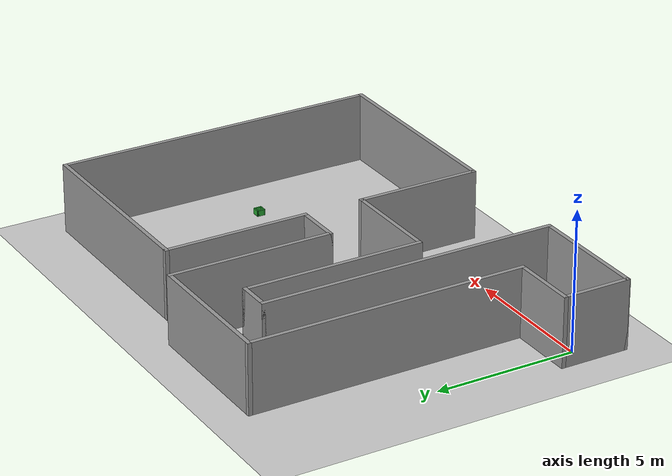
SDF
<sdf version="1.7">
 <world name="default">
  <include><uri>model://ground_plane</uri></include>
  <include><uri>model://sun</uri><pose>0 0 20 0 0 0</pose></include>
  <light name="spot_light" type="spot">
   <pose>10 5 25 0 -0 0</pose>
   <diffuse>1 1 1 1</diffuse>
   <specular>1 1 1 1</specular>
   <direction>0 0 -1</direction>
   <attenuation>
    <range>100</range>
    <constant>0.1</constant>
    <linear>0.01</linear>
    <quadratic>0.001</quadratic>
   </attenuation>
   <spot><inner_angle>0.9</inner_angle><outer_angle>1.5</outer_angle><falloff>1</falloff></spot>
  </light>
  <include><uri>model://GreenBin</uri><name>bin</name><pose>13.6541 3.67158 0.010000 0 -0 0</pose></include>
  <model name="building">
   <pose>7.55 4.5 0 0 -0 -1.5708</pose>
   <link name="Wall_0">
    <collision name="Wall_0_Collision">
     <geometry><box><size>5.25 0.15 2.5</size></box></geometry>
     <pose>0 0 1.25 0 -0 0</pose>
    </collision>
    <visual name="Wall_0_Visual">
     <pose>0 0 1.25 0 -0 0</pose>
     <geometry><box><size>5.25 0.15 2.5</size></box></geometry>
     <material>
      <script><uri>file://media/materials/scripts/gazebo.material</uri><name>Gazebo/Grey</name></script>
      <ambient>1 1 1 1</ambient>
     </material>
     <meta><layer>0</layer></meta>
    </visual>
    <pose>-2.9 0.85 0 0 -0 3.14159</pose>
   </link>
   <link name="Wall_1">
    <collision name="Wall_1_Collision">
     <geometry><box><size>7.5 0.15 2.5</size></box></geometry>
     <pose>0 0 1.25 0 -0 0</pose>
    </collision>
    <visual name="Wall_1_Visual">
     <pose>0 0 1.25 0 -0 0</pose>
     <geometry><box><size>7.5 0.15 2.5</size></box></geometry>
     <material>
      <script><uri>file://media/materials/scripts/gazebo.material</uri><name>Gazebo/Grey</name></script>
      <ambient>1 1 1 1</ambient>
     </material>
     <meta><layer>0</layer></meta>
    </visual>
    <pose>-5.45 4.525 0 0 -0 1.5708</pose>
   </link>
   <link name="Wall_10">
    <collision name="Wall_10_Collision">
     <geometry><box><size>2.4 0.15 2.5</size></box></geometry>
     <pose>0 0 1.25 0 -0 0</pose>
    </collision>
    <visual name="Wall_10_Visual">
     <pose>0 0 1.25 0 -0 0</pose>
     <geometry><box><size>2.4 0.15 2.5</size></box></geometry>
     <material>
      <script><uri>file://media/materials/scripts/gazebo.material</uri><name>Gazebo/Grey</name></script>
      <ambient>1 1 1 1</ambient>
     </material>
     <meta><layer>0</layer></meta>
    </visual>
    <pose>4.9 -8.2 0 0 -0 3.14159</pose>
   </link>
   <link name="Wall_11">
    <collision name="Wall_11_Collision">
     <geometry><box><size>2.5 0.15 2.5</size></box></geometry>
     <pose>0 0 1.25 0 -0 0</pose>
    </collision>
    <visual name="Wall_11_Visual">
     <pose>0 0 1.25 0 -0 0</pose>
     <geometry><box><size>2.5 0.15 2.5</size></box></geometry>
     <material>
      <script><uri>file://media/materials/scripts/gazebo.material</uri><name>Gazebo/Grey</name></script>
      <ambient>1 1 1 1</ambient>
     </material>
     <meta><layer>0</layer></meta>
    </visual>
    <pose>3.7 -7.025 0 0 -0 1.5708</pose>
   </link>
   <link name="Wall_12">
    <collision name="Wall_12_Collision">
     <geometry><box><size>10 0.15 2.5</size></box></geometry>
     <pose>0 0 1.25 0 -0 0</pose>
    </collision>
    <visual name="Wall_12_Visual">
     <pose>0 0 1.25 0 -0 0</pose>
     <geometry><box><size>10 0.15 2.5</size></box></geometry>
     <material>
      <script><uri>file://media/materials/scripts/gazebo.material</uri><name>Gazebo/Grey</name></script>
      <ambient>1 1 1 1</ambient>
     </material>
     <meta><layer>0</layer></meta>
    </visual>
    <pose>-1.225 -5.85 0 0 -0 3.14159</pose>
   </link>
   <link name="Wall_13">
    <collision name="Wall_13_Collision">
     <geometry><box><size>5.25 0.15 2.5</size></box></geometry>
     <pose>0 0 1.25 0 -0 0</pose>
    </collision>
    <visual name="Wall_13_Visual">
     <pose>0 0 1.25 0 -0 0</pose>
     <geometry><box><size>5.25 0.15 2.5</size></box></geometry>
     <material>
      <script><uri>file://media/materials/scripts/gazebo.material</uri><name>Gazebo/Grey</name></script>
      <ambient>1 1 1 1</ambient>
     </material>
     <meta><layer>0</layer></meta>
    </visual>
    <pose>-6.15 -3.3 0 0 -0 1.5708</pose>
   </link>
   <link name="Wall_14">
    <collision name="Wall_14_Collision">
     <geometry><box><size>5.95 0.15 2.5</size></box></geometry>
     <pose>0 0 1.25 0 -0 0</pose>
    </collision>
    <visual name="Wall_14_Visual">
     <pose>0 0 1.25 0 -0 0</pose>
     <geometry><box><size>5.95 0.15 2.5</size></box></geometry>
     <material>
      <script><uri>file://media/materials/scripts/gazebo.material</uri><name>Gazebo/Grey</name></script>
      <ambient>1 1 1 1</ambient>
     </material>
     <meta><layer>0</layer></meta>
    </visual>
    <pose>-3.25 -0.75 0 0 -0 0</pose>
   </link>
   <link name="Wall_15">
    <collision name="Wall_15_Collision">
     <geometry><box><size>1.75 0.15 2.5</size></box></geometry>
     <pose>0 0 1.25 0 -0 0</pose>
    </collision>
    <visual name="Wall_15_Visual">
     <pose>0 0 1.25 0 -0 0</pose>
     <geometry><box><size>1.75 0.15 2.5</size></box></geometry>
     <material>
      <script><uri>file://media/materials/scripts/gazebo.material</uri><name>Gazebo/Grey</name></script>
      <ambient>1 1 1 1</ambient>
     </material>
     <meta><layer>0</layer></meta>
    </visual>
    <pose>-0.35 0.05 0 0 -0 1.5708</pose>
   </link>
   <link name="Wall_2">
    <collision name="Wall_2_Collision">
     <geometry><box><size>11.75 0.15 2.5</size></box></geometry>
     <pose>0 0 1.25 0 -0 0</pose>
    </collision>
    <visual name="Wall_2_Visual">
     <pose>0 0 1.25 0 -0 0</pose>
     <geometry><box><size>11.75 0.15 2.5</size></box></geometry>
     <material>
      <script><uri>file://media/materials/scripts/gazebo.material</uri><name>Gazebo/Grey</name></script>
      <ambient>1 1 1 1</ambient>
     </material>
     <meta><layer>0</layer></meta>
    </visual>
    <pose>0.35 8.2 0 0 -0 0</pose>
   </link>
   <link name="Wall_3">
    <collision name="Wall_3_Collision">
     <geometry><box><size>7.5 0.15 2.5</size></box></geometry>
     <pose>0 0 1.25 0 -0 0</pose>
    </collision>
    <visual name="Wall_3_Visual">
     <pose>0 0 1.25 0 -0 0</pose>
     <geometry><box><size>7.5 0.15 2.5</size></box></geometry>
     <material>
      <script><uri>file://media/materials/scripts/gazebo.material</uri><name>Gazebo/Grey</name></script>
      <ambient>1 1 1 1</ambient>
     </material>
     <meta><layer>0</layer></meta>
    </visual>
    <pose>6.15 4.525 0 0 -0 -1.5708</pose>
   </link>
   <link name="Wall_4">
    <collision name="Wall_4_Collision">
     <geometry><box><size>4.5 0.15 2.5</size></box></geometry>
     <pose>0 0 1.25 0 -0 0</pose>
    </collision>
    <visual name="Wall_4_Visual">
     <pose>0 0 1.25 0 -0 0</pose>
     <geometry><box><size>4.5 0.15 2.5</size></box></geometry>
     <material>
      <script><uri>file://media/materials/scripts/gazebo.material</uri><name>Gazebo/Grey</name></script>
      <ambient>1 1 1 1</ambient>
     </material>
     <meta><layer>0</layer></meta>
    </visual>
    <pose>3.975 0.85 0 0 -0 3.14159</pose>
   </link>
   <link name="Wall_5">
    <collision name="Wall_5_Collision">
     <geometry><box><size>3.75 0.15 2.5</size></box></geometry>
     <pose>0 0 1.25 0 -0 0</pose>
    </collision>
    <visual name="Wall_5_Visual">
     <pose>0 0 1.25 0 -0 0</pose>
     <geometry><box><size>3.75 0.15 2.5</size></box></geometry>
     <material>
      <script><uri>file://media/materials/scripts/gazebo.material</uri><name>Gazebo/Grey</name></script>
      <ambient>1 1 1 1</ambient>
     </material>
     <meta><layer>0</layer></meta>
    </visual>
    <pose>1.8 -0.95 0 0 -0 -1.5708</pose>
   </link>
   <link name="Wall_6">
    <collision name="Wall_6_Collision">
     <geometry><box><size>6.5 0.15 2.5</size></box></geometry>
     <pose>0 0 1.25 0 -0 0</pose>
    </collision>
    <visual name="Wall_6_Visual">
     <pose>0 0 1.25 0 -0 0</pose>
     <geometry><box><size>6.5 0.15 2.5</size></box></geometry>
     <material>
      <script><uri>file://media/materials/scripts/gazebo.material</uri><name>Gazebo/Grey</name></script>
      <ambient>1 1 1 1</ambient>
     </material>
     <meta><layer>0</layer></meta>
    </visual>
    <pose>-1.375 -2.75 0 0 -0 3.14159</pose>
   </link>
   <link name="Wall_7">
    <collision name="Wall_7_Collision">
     <geometry><box><size>1.25 0.15 2.5</size></box></geometry>
     <pose>0 0 1.25 0 -0 0</pose>
    </collision>
    <visual name="Wall_7_Visual">
     <pose>0 0 1.25 0 -0 0</pose>
     <geometry><box><size>1.25 0.15 2.5</size></box></geometry>
     <material>
      <script><uri>file://media/materials/scripts/gazebo.material</uri><name>Gazebo/Grey</name></script>
      <ambient>1 1 1 1</ambient>
     </material>
     <meta><layer>0</layer></meta>
    </visual>
    <pose>-4.55 -3.3 0 0 -0 -1.5708</pose>
   </link>
   <link name="Wall_8">
    <collision name="Wall_8_Collision">
     <geometry><box><size>10.75 0.15 2.5</size></box></geometry>
     <pose>0 0 1.25 0 -0 0</pose>
    </collision>
    <visual name="Wall_8_Visual">
     <pose>0 0 1.25 0 -0 0</pose>
     <geometry><box><size>10.75 0.15 2.5</size></box></geometry>
     <material>
      <script><uri>file://media/materials/scripts/gazebo.material</uri><name>Gazebo/Grey</name></script>
      <ambient>1 1 1 1</ambient>
     </material>
     <meta><layer>0</layer></meta>
    </visual>
    <pose>0.75 -3.85 0 0 -0 0</pose>
   </link>
   <link name="Wall_9">
    <collision name="Wall_9_Collision">
     <geometry><box><size>4.5 0.15 2.5</size></box></geometry>
     <pose>0 0 1.25 0 -0 0</pose>
    </collision>
    <visual name="Wall_9_Visual">
     <pose>0 0 1.25 0 -0 0</pose>
     <geometry><box><size>4.5 0.15 2.5</size></box></geometry>
     <material>
      <script><uri>file://media/materials/scripts/gazebo.material</uri><name>Gazebo/Grey</name></script>
      <ambient>1 1 1 1</ambient>
     </material>
     <meta><layer>0</layer></meta>
    </visual>
    <pose>6.05 -6.025 0 0 -0 -1.5708</pose>
   </link>
   <static>1</static>
  </model>
 </world>
</sdf>

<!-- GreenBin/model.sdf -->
<sdf version='1.6'>
  <model name='bin'>
    <link name='link_0'>
      <pose frame=''>0 -0.125 0.025 0 -0 0</pose>
      <inertial>
        <mass>1</mass>
        <inertia>
          <ixx>0.166667</ixx>
          <ixy>0</ixy>
          <ixz>0</ixz>
          <iyy>0.166667</iyy>
          <iyz>0</iyz>
          <izz>0.166667</izz>
        </inertia>
        <pose frame=''>0 0 0 0 -0 0</pose>
      </inertial>
      <gravity>1</gravity>
      <self_collide>0</self_collide>
      <kinematic>0</kinematic>
      <visual name='visual'>
        <pose frame=''>0 0 0 0 -0 0</pose>
        <geometry>
          <box>
            <size>0.3 0.05 0.3</size>
          </box>
        </geometry>
        <material>
          <lighting>1</lighting>
          <script>
            <uri>file://media/materials/scripts/gazebo.material</uri>
            <name>Gazebo/Green</name>
          </script>
          <ambient>0 1 0 1</ambient>
          <diffuse>0 1 0 1</diffuse>
          <specular>0.01 1 0.01 1</specular>
          <emissive>0 0 0 1</emissive>
          <shader type='vertex'>
            <normal_map>__default__</normal_map>
          </shader>
        </material>
        <cast_shadows>1</cast_shadows>
        <transparency>0</transparency>
      </visual>
      <collision name='collision'>
        <laser_retro>0</laser_retro>
        <max_contacts>10</max_contacts>
        <pose frame=''>0 0 0 0 -0 0</pose>
        <geometry>
          <box>
            <size>0.3 0.05 0.3</size>
          </box>
        </geometry>
        <surface>
          <friction>
            <ode>
              <mu>1</mu>
              <mu2>1</mu2>
              <fdir1>0 0 0</fdir1>
              <slip1>0</slip1>
              <slip2>0</slip2>
            </ode>
            <torsional>
              <coefficient>1</coefficient>
              <patch_radius>0</patch_radius>
              <surface_radius>0</surface_radius>
              <use_patch_radius>1</use_patch_radius>
              <ode>
                <slip>0</slip>
              </ode>
            </torsional>
          </friction>
          <bounce>
            <restitution_coefficient>0</restitution_coefficient>
            <threshold>1e+06</threshold>
          </bounce>
          <contact>
            <collide_without_contact>0</collide_without_contact>
            <collide_without_contact_bitmask>1</collide_without_contact_bitmask>
            <collide_bitmask>1</collide_bitmask>
            <ode>
              <soft_cfm>0</soft_cfm>
              <soft_erp>0.2</soft_erp>
              <kp>1e+13</kp>
              <kd>1</kd>
              <max_vel>0.01</max_vel>
              <min_depth>0</min_depth>
            </ode>
            <bullet>
              <split_impulse>1</split_impulse>
              <split_impulse_penetration_threshold>-0.01</split_impulse_penetration_threshold>
              <soft_cfm>0</soft_cfm>
              <soft_erp>0.2</soft_erp>
              <kp>1e+13</kp>
              <kd>1</kd>
            </bullet>
          </contact>
        </surface>
      </collision>
    </link>
    <link name='link_0_clone'>
      <pose frame=''>0 0.125 0.025 0 -0 0</pose>
      <inertial>
        <mass>1</mass>
        <inertia>
          <ixx>0.166667</ixx>
          <ixy>0</ixy>
          <ixz>0</ixz>
          <iyy>0.166667</iyy>
          <iyz>0</iyz>
          <izz>0.166667</izz>
        </inertia>
        <pose frame=''>0 0 0 0 -0 0</pose>
      </inertial>
      <self_collide>0</self_collide>
      <kinematic>0</kinematic>
      <visual name='visual'>
        <pose frame=''>0 0 0 0 -0 0</pose>
        <geometry>
          <box>
            <size>0.3 0.05 0.3</size>
          </box>
        </geometry>
        <material>
          <lighting>1</lighting>
          <script>
            <uri>file://media/materials/scripts/gazebo.material</uri>
            <name>Gazebo/Green</name>
          </script>
          <ambient>0 1 0 1</ambient>
          <diffuse>0 1 0 1</diffuse>
          <specular>0.01 1 0.01 1</specular>
          <emissive>0 0 0 1</emissive>
          <shader type='vertex'>
            <normal_map>__default__</normal_map>
          </shader>
        </material>
        <cast_shadows>1</cast_shadows>
        <transparency>0</transparency>
      </visual>
      <collision name='collision'>
        <laser_retro>0</laser_retro>
        <max_contacts>10</max_contacts>
        <pose frame=''>0 0 0 0 -0 0</pose>
        <geometry>
          <box>
            <size>0.3 0.05 0.3</size>
          </box>
        </geometry>
        <surface>
          <friction>
            <ode>
              <mu>1</mu>
              <mu2>1</mu2>
              <fdir1>0 0 0</fdir1>
              <slip1>0</slip1>
              <slip2>0</slip2>
            </ode>
            <torsional>
              <coefficient>1</coefficient>
              <patch_radius>0</patch_radius>
              <surface_radius>0</surface_radius>
              <use_patch_radius>1</use_patch_radius>
              <ode>
                <slip>0</slip>
              </ode>
            </torsional>
          </friction>
          <bounce>
            <restitution_coefficient>0</restitution_coefficient>
            <threshold>1e+06</threshold>
          </bounce>
          <contact>
            <collide_without_contact>0</collide_without_contact>
            <collide_without_contact_bitmask>1</collide_without_contact_bitmask>
            <collide_bitmask>1</collide_bitmask>
            <ode>
              <soft_cfm>0</soft_cfm>
              <soft_erp>0.2</soft_erp>
              <kp>1e+13</kp>
              <kd>1</kd>
              <max_vel>0.01</max_vel>
              <min_depth>0</min_depth>
            </ode>
            <bullet>
              <split_impulse>1</split_impulse>
              <split_impulse_penetration_threshold>-0.01</split_impulse_penetration_threshold>
              <soft_cfm>0</soft_cfm>
              <soft_erp>0.2</soft_erp>
              <kp>1e+13</kp>
              <kd>1</kd>
            </bullet>
          </contact>
        </surface>
      </collision>
    </link>
    <link name='link_0_clone_0'>
      <pose frame=''>-0.124999 -0 0.025 0 -0 1.5708</pose>
      <inertial>
        <mass>1</mass>
        <inertia>
          <ixx>0.166667</ixx>
          <ixy>0</ixy>
          <ixz>0</ixz>
          <iyy>0.166667</iyy>
          <iyz>0</iyz>
          <izz>0.166667</izz>
        </inertia>
        <pose frame=''>0 0 0 0 -0 0</pose>
      </inertial>
      <self_collide>0</self_collide>
      <kinematic>0</kinematic>
      <gravity>1</gravity>
      <visual name='visual'>
        <pose frame=''>0 0 0 0 -0 0</pose>
        <geometry>
          <box>
            <size>0.3 0.05 0.3</size>
          </box>
        </geometry>
        <material>
          <lighting>1</lighting>
          <script>
            <uri>file://media/materials/scripts/gazebo.material</uri>
            <name>Gazebo/Green</name>
          </script>
          <ambient>0 1 0 1</ambient>
          <diffuse>0 1 0 1</diffuse>
          <specular>0.01 1 0.01 1</specular>
          <emissive>0 0 0 1</emissive>
          <shader type='vertex'>
            <normal_map>__default__</normal_map>
          </shader>
        </material>
        <cast_shadows>1</cast_shadows>
        <transparency>0</transparency>
      </visual>
      <collision name='collision'>
        <laser_retro>0</laser_retro>
        <max_contacts>10</max_contacts>
        <pose frame=''>0 0 0 0 -0 0</pose>
        <geometry>
          <box>
            <size>0.3 0.05 0.3</size>
          </box>
        </geometry>
        <surface>
          <friction>
            <ode>
              <mu>1</mu>
              <mu2>1</mu2>
              <fdir1>0 0 0</fdir1>
              <slip1>0</slip1>
              <slip2>0</slip2>
            </ode>
            <torsional>
              <coefficient>1</coefficient>
              <patch_radius>0</patch_radius>
              <surface_radius>0</surface_radius>
              <use_patch_radius>1</use_patch_radius>
              <ode>
                <slip>0</slip>
              </ode>
            </torsional>
          </friction>
          <bounce>
            <restitution_coefficient>0</restitution_coefficient>
            <threshold>1e+06</threshold>
          </bounce>
          <contact>
            <collide_without_contact>0</collide_without_contact>
            <collide_without_contact_bitmask>1</collide_without_contact_bitmask>
            <collide_bitmask>1</collide_bitmask>
            <ode>
              <soft_cfm>0</soft_cfm>
              <soft_erp>0.2</soft_erp>
              <kp>1e+13</kp>
              <kd>1</kd>
              <max_vel>0.01</max_vel>
              <min_depth>0</min_depth>
            </ode>
            <bullet>
              <split_impulse>1</split_impulse>
              <split_impulse_penetration_threshold>-0.01</split_impulse_penetration_threshold>
              <soft_cfm>0</soft_cfm>
              <soft_erp>0.2</soft_erp>
              <kp>1e+13</kp>
              <kd>1</kd>
            </bullet>
          </contact>
        </surface>
      </collision>
    </link>
    <link name='link_0_clone_0_clone'>
      <pose frame=''>0.124999 0 0.025 0 -0 1.5708</pose>
      <inertial>
        <mass>1</mass>
        <inertia>
          <ixx>0.166667</ixx>
          <ixy>0</ixy>
          <ixz>0</ixz>
          <iyy>0.166667</iyy>
          <iyz>0</iyz>
          <izz>0.166667</izz>
        </inertia>
        <pose frame=''>0 0 0 0 -0 0</pose>
      </inertial>
      <self_collide>0</self_collide>
      <kinematic>0</kinematic>
      <gravity>1</gravity>
      <visual name='visual'>
        <pose frame=''>0 0 0 0 -0 0</pose>
        <geometry>
          <box>
            <size>0.3 0.05 0.3</size>
          </box>
        </geometry>
        <material>
          <lighting>1</lighting>
          <script>
            <uri>file://media/materials/scripts/gazebo.material</uri>
            <name>Gazebo/Green</name>
          </script>
          <ambient>0 1 0 1</ambient>
          <diffuse>0 1 0 1</diffuse>
          <specular>0.01 1 0.01 1</specular>
          <emissive>0 0 0 1</emissive>
          <shader type='vertex'>
            <normal_map>__default__</normal_map>
          </shader>
        </material>
        <cast_shadows>1</cast_shadows>
        <transparency>0</transparency>
      </visual>
      <collision name='collision'>
        <laser_retro>0</laser_retro>
        <max_contacts>10</max_contacts>
        <pose frame=''>0 0 0 0 -0 0</pose>
        <geometry>
          <box>
            <size>0.3 0.05 0.3</size>
          </box>
        </geometry>
        <surface>
          <friction>
            <ode>
              <mu>1</mu>
              <mu2>1</mu2>
              <fdir1>0 0 0</fdir1>
              <slip1>0</slip1>
              <slip2>0</slip2>
            </ode>
            <torsional>
              <coefficient>1</coefficient>
              <patch_radius>0</patch_radius>
              <surface_radius>0</surface_radius>
              <use_patch_radius>1</use_patch_radius>
              <ode>
                <slip>0</slip>
              </ode>
            </torsional>
          </friction>
          <bounce>
            <restitution_coefficient>0</restitution_coefficient>
            <threshold>1e+06</threshold>
          </bounce>
          <contact>
            <collide_without_contact>0</collide_without_contact>
            <collide_without_contact_bitmask>1</collide_without_contact_bitmask>
            <collide_bitmask>1</collide_bitmask>
            <ode>
              <soft_cfm>0</soft_cfm>
              <soft_erp>0.2</soft_erp>
              <kp>1e+13</kp>
              <kd>1</kd>
              <max_vel>0.01</max_vel>
              <min_depth>0</min_depth>
            </ode>
            <bullet>
              <split_impulse>1</split_impulse>
              <split_impulse_penetration_threshold>-0.01</split_impulse_penetration_threshold>
              <soft_cfm>0</soft_cfm>
              <soft_erp>0.2</soft_erp>
              <kp>1e+13</kp>
              <kd>1</kd>
            </bullet>
          </contact>
        </surface>
      </collision>
    </link>
    <link name='link_0_clone_1'>
      <pose frame=''>0 0 -0.099999 1.5708 -0 0</pose>
      <inertial>
        <mass>1</mass>
        <inertia>
          <ixx>0.166667</ixx>
          <ixy>0</ixy>
          <ixz>0</ixz>
          <iyy>0.166667</iyy>
          <iyz>0</iyz>
          <izz>0.166667</izz>
        </inertia>
        <pose frame=''>0 0 0 0 -0 0</pose>
      </inertial>
      <self_collide>0</self_collide>
      <kinematic>0</kinematic>
      <gravity>1</gravity>
      <visual name='visual'>
        <pose frame=''>0 0 0 0 -0 0</pose>
        <geometry>
          <box>
            <size>0.3 0.05 0.3</size>
          </box>
        </geometry>
        <material>
          <lighting>1</lighting>
          <script>
            <uri>file://media/materials/scripts/gazebo.material</uri>
            <name>Gazebo/Green</name>
          </script>
          <ambient>0 1 0 1</ambient>
          <diffuse>0 1 0 1</diffuse>
          <specular>0.01 1 0.01 1</specular>
          <emissive>0 0 0 1</emissive>
          <shader type='vertex'>
            <normal_map>__default__</normal_map>
          </shader>
        </material>
        <cast_shadows>1</cast_shadows>
        <transparency>0</transparency>
      </visual>
      <collision name='collision'>
        <laser_retro>0</laser_retro>
        <max_contacts>10</max_contacts>
        <pose frame=''>0 0 0 0 -0 0</pose>
        <geometry>
          <box>
            <size>0.3 0.05 0.3</size>
          </box>
        </geometry>
        <surface>
          <friction>
            <ode>
              <mu>1</mu>
              <mu2>1</mu2>
              <fdir1>0 0 0</fdir1>
              <slip1>0</slip1>
              <slip2>0</slip2>
            </ode>
            <torsional>
              <coefficient>1</coefficient>
              <patch_radius>0</patch_radius>
              <surface_radius>0</surface_radius>
              <use_patch_radius>1</use_patch_radius>
              <ode>
                <slip>0</slip>
              </ode>
            </torsional>
          </friction>
          <bounce>
            <restitution_coefficient>0</restitution_coefficient>
            <threshold>1e+06</threshold>
          </bounce>
          <contact>
            <collide_without_contact>0</collide_without_contact>
            <collide_without_contact_bitmask>1</collide_without_contact_bitmask>
            <collide_bitmask>1</collide_bitmask>
            <ode>
              <soft_cfm>0</soft_cfm>
              <soft_erp>0.2</soft_erp>
              <kp>1e+13</kp>
              <kd>1</kd>
              <max_vel>0.01</max_vel>
              <min_depth>0</min_depth>
            </ode>
            <bullet>
              <split_impulse>1</split_impulse>
              <split_impulse_penetration_threshold>-0.01</split_impulse_penetration_threshold>
              <soft_cfm>0</soft_cfm>
              <soft_erp>0.2</soft_erp>
              <kp>1e+13</kp>
              <kd>1</kd>
            </bullet>
          </contact>
        </surface>
      </collision>
    </link>
    <joint name='link_0_clone_1_JOINT_0' type='fixed'>
      <parent>link_0_clone_1</parent>
      <child>link_0</child>
      <pose frame=''>0 0 0 0 -0 0</pose>
      <physics>
        <ode>
          <limit>
            <cfm>0</cfm>
            <erp>0.2</erp>
          </limit>
          <suspension>
            <cfm>0</cfm>
            <erp>0.2</erp>
          </suspension>
        </ode>
      </physics>
    </joint>
    <joint name='link_0_clone_1_JOINT_1' type='fixed'>
      <parent>link_0_clone_1</parent>
      <child>link_0_clone</child>
      <pose frame=''>0 0 0 0 -0 0</pose>
      <physics>
        <ode>
          <limit>
            <cfm>0</cfm>
            <erp>0.2</erp>
          </limit>
          <suspension>
            <cfm>0</cfm>
            <erp>0.2</erp>
          </suspension>
        </ode>
      </physics>
    </joint>
    <joint name='link_0_clone_1_JOINT_2' type='fixed'>
      <parent>link_0_clone_1</parent>
      <child>link_0_clone_0_clone</child>
      <pose frame=''>0 0 0 0 -0 0</pose>
      <physics>
        <ode>
          <limit>
            <cfm>0</cfm>
            <erp>0.2</erp>
          </limit>
          <suspension>
            <cfm>0</cfm>
            <erp>0.2</erp>
          </suspension>
        </ode>
      </physics>
    </joint>
    <joint name='link_0_clone_1_JOINT_3' type='fixed'>
      <parent>link_0_clone_1</parent>
      <child>link_0_clone_0</child>
      <pose frame=''>0 0 0 0 -0 0</pose>
      <physics>
        <ode>
          <limit>
            <cfm>0</cfm>
            <erp>0.2</erp>
          </limit>
          <suspension>
            <cfm>0</cfm>
            <erp>0.2</erp>
          </suspension>
        </ode>
      </physics>
    </joint>
    <static>0</static>
    <allow_auto_disable>1</allow_auto_disable>
  </model>
</sdf>
